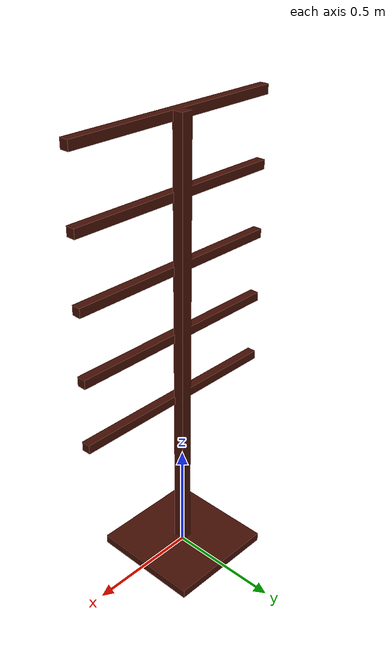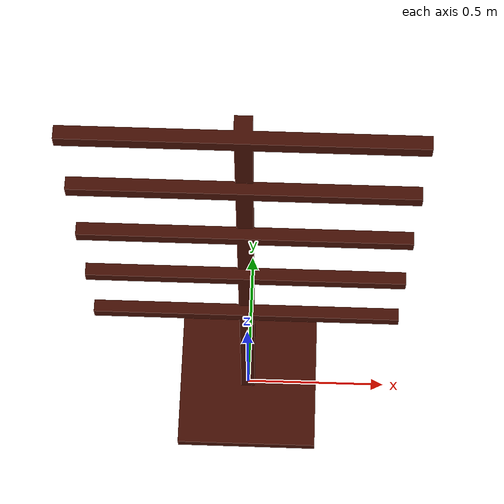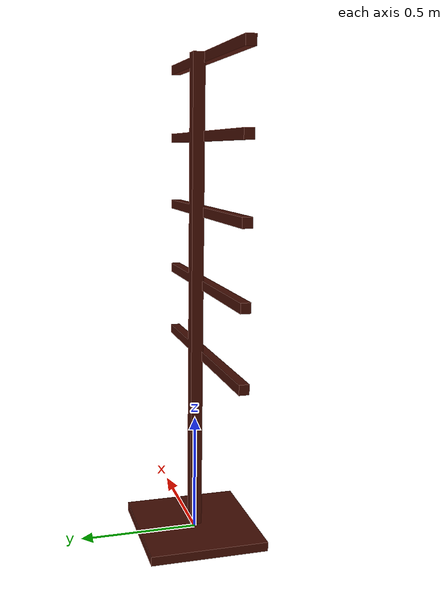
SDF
<?xml version='1.0'?>
<sdf version='1.6'>
      <model name='cadriano_geom'>
      <link name='cadriano_world_link'>
        <pose frame=''>0 0 0 0 -0 0</pose>
        <inertial>
          <pose frame=''>0 0 0 0 -0 0</pose>
          <mass>1</mass>
          <inertia>
            <ixx>1</ixx>
            <ixy>0</ixy>
            <ixz>0</ixz>
            <iyy>1</iyy>
            <iyz>0</iyz>
            <izz>1</izz>
          </inertia>
        </inertial>
        <collision name='cadriano_world_link_collision'>
          <pose frame=''>0 0 0 0 -0 0</pose>
          <geometry>
            <mesh>
              <scale>1 1 1</scale>
              <uri>model://digital_tree/meshes/digital_tree.dae</uri>
            </mesh>
          </geometry>
          <max_contacts>10</max_contacts>
          <surface>
            <contact>
              <ode/>
            </contact>
            <bounce/>
            <friction>
              <torsional>
                <ode/>
              </torsional>
              <ode/>
            </friction>
          </surface>
        </collision>
        <visual name='cadriano_world_link_visual'>
          <pose frame=''>0 0 0 0 -0 0</pose>
          <geometry>
            <mesh>
              <scale>1 1 1</scale>
              <uri>model://digital_tree/meshes/digital_tree.dae</uri>
            </mesh>
          </geometry>
        </visual>
        <self_collide>0</self_collide>
        <enable_wind>0</enable_wind>
        <kinematic>0</kinematic>
      </link>
      <static>1</static>
    </model>
</sdf>
